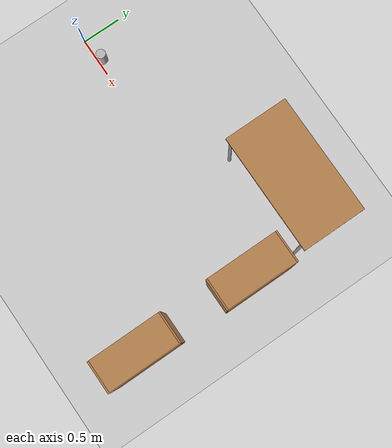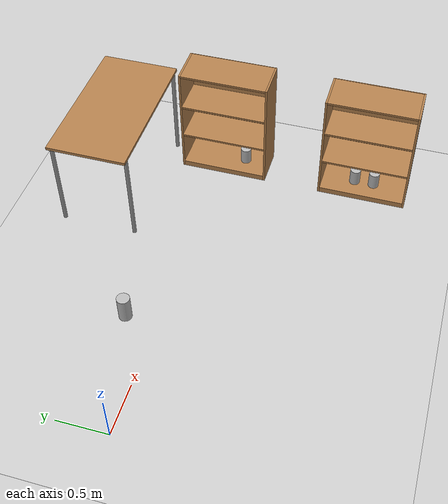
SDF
<sdf version="1.4">
 <world name="default">
  <include><uri>model://ground_plane</uri></include>
  <include><uri>model://sun</uri></include>
  <model name="bookshelf1">
   <static>true</static>
   <pose>3.7 0 0 0 0 -1.5707</pose>
   <link name="link">
    <inertial><mass>1.0</mass></inertial>
    <collision name="back">
     <pose>0 0.005 0.6 0 0 0</pose>
     <geometry><box><size>0.9 0.01 1.2</size></box></geometry>
    </collision>
    <visual name="visual1">
     <pose>0 0.005 0.6 0 0 0</pose>
     <geometry><box><size>0.9 0.01 1.2</size></box></geometry>
     <material>
      <script><uri>file://media/materials/scripts/gazebo.material</uri><name>Gazebo/Wood</name></script>
     </material>
    </visual>
    <collision name="left_side">
     <pose>0.45 -0.195 0.6 0 0 0</pose>
     <geometry><box><size>0.02 0.4 1.2</size></box></geometry>
    </collision>
    <visual name="visual2">
     <pose>0.45 -0.195 0.6 0 0 0</pose>
     <geometry><box><size>0.02 0.4 1.2</size></box></geometry>
     <material>
      <script><uri>file://media/materials/scripts/gazebo.material</uri><name>Gazebo/Wood</name></script>
     </material>
    </visual>
    <collision name="right_side">
     <pose>-0.45 -0.195 0.6 0 0 0</pose>
     <geometry><box><size>0.02 0.4 1.2</size></box></geometry>
    </collision>
    <visual name="visual3">
     <pose>-0.45 -0.195 0.6 0 0 0</pose>
     <geometry><box><size>0.02 0.4 1.2</size></box></geometry>
     <material>
      <script><uri>file://media/materials/scripts/gazebo.material</uri><name>Gazebo/Wood</name></script>
     </material>
    </visual>
    <collision name="bottom">
     <pose>0 -0.195 0.03 0 0 0</pose>
     <geometry><box><size>0.88 0.4 0.06</size></box></geometry>
    </collision>
    <visual name="visual4">
     <pose>0 -0.195 0.03 0 0 0</pose>
     <geometry><box><size>0.88 0.4 0.06</size></box></geometry>
     <material>
      <script><uri>file://media/materials/scripts/gazebo.material</uri><name>Gazebo/Wood</name></script>
     </material>
    </visual>
    <collision name="top">
     <pose>0 -0.195 1.19 0 0 0</pose>
     <geometry><box><size>0.88 0.4 0.02</size></box></geometry>
    </collision>
    <visual name="visual5">
     <pose>0 -0.195 1.19 0 0 0</pose>
     <geometry><box><size>0.88 0.4 0.02</size></box></geometry>
     <material>
      <script><uri>file://media/materials/scripts/gazebo.material</uri><name>Gazebo/Wood</name></script>
     </material>
    </visual>
    <collision name="low_shelf">
     <pose>0 -0.195 0.43 0 0 0</pose>
     <geometry><box><size>0.88 0.4 0.02</size></box></geometry>
    </collision>
    <visual name="visual6">
     <pose>0 -0.195 0.43 0 0 0</pose>
     <geometry><box><size>0.88 0.4 0.02</size></box></geometry>
     <material>
      <script><uri>file://media/materials/scripts/gazebo.material</uri><name>Gazebo/Wood</name></script>
     </material>
    </visual>
    <collision name="high_shelf">
     <pose>0 -0.195 0.8 0 0 0</pose>
     <geometry><box><size>0.88 0.4 0.02</size></box></geometry>
    </collision>
    <visual name="visual7">
     <pose>0 -0.195 0.8 0 0 0</pose>
     <geometry><box><size>0.88 0.4 0.02</size></box></geometry>
     <material>
      <script><uri>file://media/materials/scripts/gazebo.material</uri><name>Gazebo/Wood</name></script>
     </material>
    </visual>
   </link>
  </model>
  <model name="bookshelf1">
   <static>true</static>
   <pose>3.7 -1.5 0 0 0 -1.5707</pose>
   <link name="link">
    <inertial><mass>1.0</mass></inertial>
    <collision name="back">
     <pose>0 0.005 0.6 0 0 0</pose>
     <geometry><box><size>0.9 0.01 1.2</size></box></geometry>
    </collision>
    <visual name="visual1">
     <pose>0 0.005 0.6 0 0 0</pose>
     <geometry><box><size>0.9 0.01 1.2</size></box></geometry>
     <material>
      <script><uri>file://media/materials/scripts/gazebo.material</uri><name>Gazebo/Wood</name></script>
     </material>
    </visual>
    <collision name="left_side">
     <pose>0.45 -0.195 0.6 0 0 0</pose>
     <geometry><box><size>0.02 0.4 1.2</size></box></geometry>
    </collision>
    <visual name="visual2">
     <pose>0.45 -0.195 0.6 0 0 0</pose>
     <geometry><box><size>0.02 0.4 1.2</size></box></geometry>
     <material>
      <script><uri>file://media/materials/scripts/gazebo.material</uri><name>Gazebo/Wood</name></script>
     </material>
    </visual>
    <collision name="right_side">
     <pose>-0.45 -0.195 0.6 0 0 0</pose>
     <geometry><box><size>0.02 0.4 1.2</size></box></geometry>
    </collision>
    <visual name="visual3">
     <pose>-0.45 -0.195 0.6 0 0 0</pose>
     <geometry><box><size>0.02 0.4 1.2</size></box></geometry>
     <material>
      <script><uri>file://media/materials/scripts/gazebo.material</uri><name>Gazebo/Wood</name></script>
     </material>
    </visual>
    <collision name="bottom">
     <pose>0 -0.195 0.03 0 0 0</pose>
     <geometry><box><size>0.88 0.4 0.06</size></box></geometry>
    </collision>
    <visual name="visual4">
     <pose>0 -0.195 0.03 0 0 0</pose>
     <geometry><box><size>0.88 0.4 0.06</size></box></geometry>
     <material>
      <script><uri>file://media/materials/scripts/gazebo.material</uri><name>Gazebo/Wood</name></script>
     </material>
    </visual>
    <collision name="top">
     <pose>0 -0.195 1.19 0 0 0</pose>
     <geometry><box><size>0.88 0.4 0.02</size></box></geometry>
    </collision>
    <visual name="visual5">
     <pose>0 -0.195 1.19 0 0 0</pose>
     <geometry><box><size>0.88 0.4 0.02</size></box></geometry>
     <material>
      <script><uri>file://media/materials/scripts/gazebo.material</uri><name>Gazebo/Wood</name></script>
     </material>
    </visual>
    <collision name="low_shelf">
     <pose>0 -0.195 0.43 0 0 0</pose>
     <geometry><box><size>0.88 0.4 0.02</size></box></geometry>
    </collision>
    <visual name="visual6">
     <pose>0 -0.195 0.43 0 0 0</pose>
     <geometry><box><size>0.88 0.4 0.02</size></box></geometry>
     <material>
      <script><uri>file://media/materials/scripts/gazebo.material</uri><name>Gazebo/Wood</name></script>
     </material>
    </visual>
    <collision name="high_shelf">
     <pose>0 -0.195 0.8 0 0 0</pose>
     <geometry><box><size>0.88 0.4 0.02</size></box></geometry>
    </collision>
    <visual name="visual7">
     <pose>0 -0.195 0.8 0 0 0</pose>
     <geometry><box><size>0.88 0.4 0.02</size></box></geometry>
     <material>
      <script><uri>file://media/materials/scripts/gazebo.material</uri><name>Gazebo/Wood</name></script>
     </material>
    </visual>
   </link>
  </model>
  <model name="beer">
   <link name="link">
    <pose>3.5 -1.6 0.115 0 0 0</pose>
    <inertial>
     <mass>0.390</mass>
     <inertia><ixx>0.00058</ixx><ixy>0</ixy><ixz>0</ixz><iyy>0.00058</iyy><iyz>0</iyz><izz>0.00019</izz></inertia>
    </inertial>
    <collision name="collision">
     <geometry><cylinder><radius>0.055000</radius><length>0.230000</length></cylinder></geometry>
    </collision>
    <visual name="visual">
     <geometry><cylinder><radius>0.055000</radius><length>0.230000</length></cylinder></geometry>
     <material>
      <script>
       <uri>model://beer/materials/scripts</uri>
       <uri>model://beer/materials/textures</uri>
       <name>Beer/Diffuse</name>
      </script>
     </material>
    </visual>
   </link>
  </model>
  <model name="beer">
   <link name="link">
    <pose>3.5 -1.4 0.115 0 0 0</pose>
    <inertial>
     <mass>0.390</mass>
     <inertia><ixx>0.00058</ixx><ixy>0</ixy><ixz>0</ixz><iyy>0.00058</iyy><iyz>0</iyz><izz>0.00019</izz></inertia>
    </inertial>
    <collision name="collision">
     <geometry><cylinder><radius>0.055000</radius><length>0.230000</length></cylinder></geometry>
    </collision>
    <visual name="visual">
     <geometry><cylinder><radius>0.055000</radius><length>0.230000</length></cylinder></geometry>
     <material>
      <script>
       <uri>model://beer/materials/scripts</uri>
       <uri>model://beer/materials/textures</uri>
       <name>Beer/Diffuse</name>
      </script>
     </material>
    </visual>
   </link>
  </model>
  <model name="beer">
   <link name="link">
    <pose>3.5 -0.2 0.115 0 0 0</pose>
    <inertial>
     <mass>0.390</mass>
     <inertia><ixx>0.00058</ixx><ixy>0</ixy><ixz>0</ixz><iyy>0.00058</iyy><iyz>0</iyz><izz>0.00019</izz></inertia>
    </inertial>
    <collision name="collision">
     <geometry><cylinder><radius>0.055000</radius><length>0.230000</length></cylinder></geometry>
    </collision>
    <visual name="visual">
     <geometry><cylinder><radius>0.055000</radius><length>0.230000</length></cylinder></geometry>
     <material>
      <script>
       <uri>model://beer/materials/scripts</uri>
       <uri>model://beer/materials/textures</uri>
       <name>Beer/Diffuse</name>
      </script>
     </material>
    </visual>
   </link>
  </model>
  <model name="beer">
   <link name="link">
    <pose>0.6 -0.0 1.0 0 0 0</pose>
    <inertial>
     <mass>0.390</mass>
     <inertia><ixx>0.00058</ixx><ixy>0</ixy><ixz>0</ixz><iyy>0.00058</iyy><iyz>0</iyz><izz>0.00019</izz></inertia>
    </inertial>
    <collision name="collision">
     <geometry><cylinder><radius>0.055000</radius><length>0.230000</length></cylinder></geometry>
    </collision>
    <visual name="visual">
     <geometry><cylinder><radius>0.055000</radius><length>0.230000</length></cylinder></geometry>
     <material>
      <script>
       <uri>model://beer/materials/scripts</uri>
       <uri>model://beer/materials/textures</uri>
       <name>Beer/Diffuse</name>
      </script>
     </material>
    </visual>
   </link>
  </model>
  <model name="table">
   <static>true</static>
   <pose>2.9 1 0. 0 0 0</pose>
   <link name="link">
    <collision name="surface">
     <pose>0 0 1.0 0 0 0</pose>
     <geometry><box><size>1.5 0.8 0.03</size></box></geometry>
     <surface><friction><ode><mu>0.6</mu><mu2>0.6</mu2></ode></friction></surface>
    </collision>
    <visual name="visual1">
     <pose>0 0 1.0 0 0 0</pose>
     <geometry><box><size>1.5 0.8 0.03</size></box></geometry>
     <material>
      <script><uri>file://media/materials/scripts/gazebo.material</uri><name>Gazebo/Wood</name></script>
     </material>
    </visual>
    <collision name="front_left_leg">
     <pose>0.68 0.38 0.5 0 0 0</pose>
     <geometry><cylinder><radius>0.02</radius><length>1.0</length></cylinder></geometry>
    </collision>
    <visual name="front_left_leg">
     <pose>0.68 0.38 0.5 0 0 0</pose>
     <geometry><cylinder><radius>0.02</radius><length>1.0</length></cylinder></geometry>
     <material>
      <script><uri>file://media/materials/scripts/gazebo.material</uri><name>Gazebo/Grey</name></script>
     </material>
    </visual>
    <collision name="front_right_leg">
     <pose>0.68 -0.38 0.5 0 0 0</pose>
     <geometry><cylinder><radius>0.02</radius><length>1.0</length></cylinder></geometry>
    </collision>
    <visual name="front_right_leg">
     <pose>0.68 -0.38 0.5 0 0 0</pose>
     <geometry><cylinder><radius>0.02</radius><length>1.0</length></cylinder></geometry>
     <material>
      <script><uri>file://media/materials/scripts/gazebo.material</uri><name>Gazebo/Grey</name></script>
     </material>
    </visual>
    <collision name="back_right_leg">
     <pose>-0.68 -0.38 0.5 0 0 0</pose>
     <geometry><cylinder><radius>0.02</radius><length>1.0</length></cylinder></geometry>
    </collision>
    <visual name="back_right_leg">
     <pose>-0.68 -0.38 0.5 0 0 0</pose>
     <geometry><cylinder><radius>0.02</radius><length>1.0</length></cylinder></geometry>
     <material>
      <script><uri>file://media/materials/scripts/gazebo.material</uri><name>Gazebo/Grey</name></script>
     </material>
    </visual>
    <collision name="back_left_leg">
     <pose>-0.68 0.38 0.5 0 0 0</pose>
     <geometry><cylinder><radius>0.02</radius><length>1.0</length></cylinder></geometry>
    </collision>
    <visual name="back_left_leg">
     <pose>-0.68 0.38 0.5 0 0 0</pose>
     <geometry><cylinder><radius>0.02</radius><length>1.0</length></cylinder></geometry>
     <material>
      <script><uri>file://media/materials/scripts/gazebo.material</uri><name>Gazebo/Grey</name></script>
     </material>
    </visual>
   </link>
  </model>
 </world>
</sdf>
